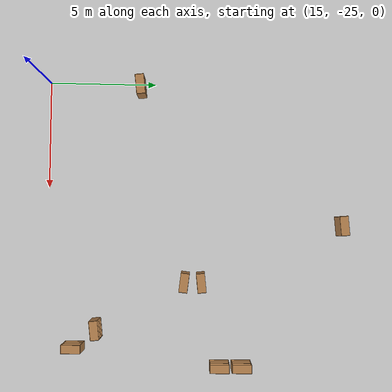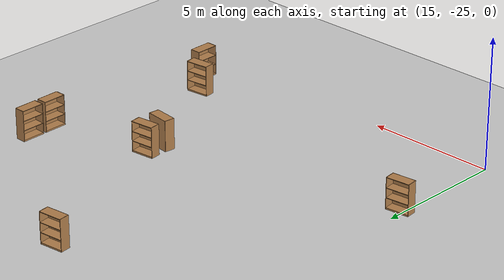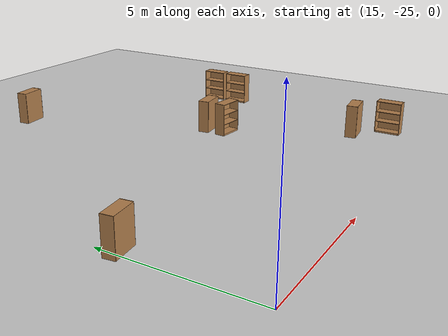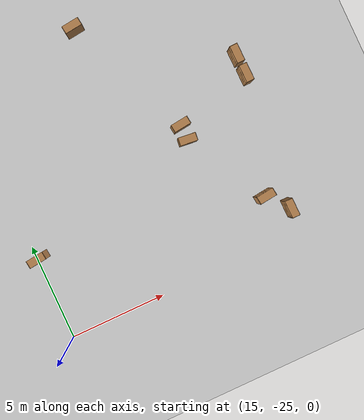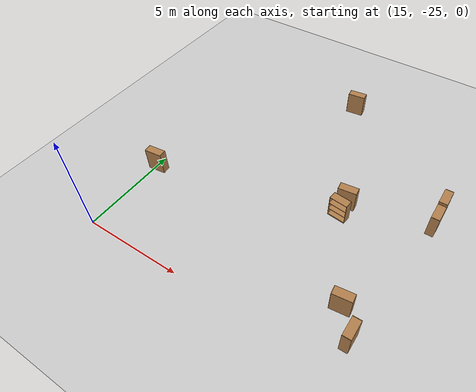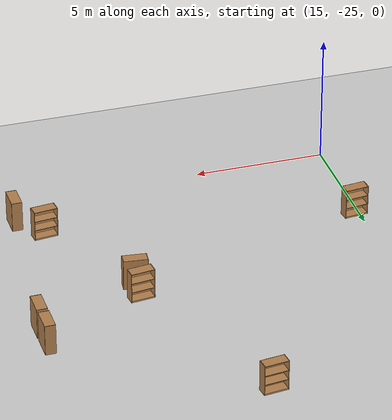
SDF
<sdf version="1.6">
 <world name="default">
  <model name="ground_plane">
   <static>1</static>
   <link name="link">
    <collision name="collision">
     <geometry><plane><normal>0 0 1</normal><size>100 100</size></plane></geometry>
     <surface>
      <contact><collide_bitmask>65535</collide_bitmask></contact>
      <friction><ode><mu>100</mu><mu2>50</mu2></ode></friction>
     </surface>
    </collision>
    <visual name="visual">
     <cast_shadows>0</cast_shadows>
     <geometry><plane><normal>0 0 1</normal><size>100 100</size></plane></geometry>
     <material>
      <script><uri>file://media/materials/scripts/gazebo.material</uri><name>Gazebo/Grey</name></script>
     </material>
    </visual>
   </link>
  </model>
  <model name="bookshelf_clone_2_clone_clone_0_clone_3_clone_0_clone_clone_1_clone_2">
   <static>1</static>
   <link name="link">
    <inertial><mass>1</mass></inertial>
    <collision name="back">
     <pose>0 0.005 0.6 0 -0 0</pose>
     <geometry><box><size>0.9 0.01 1.2</size></box></geometry>
    </collision>
    <visual name="visual1">
     <pose>0 0.005 0.6 0 -0 0</pose>
     <geometry><box><size>0.9 0.01 1.2</size></box></geometry>
     <material>
      <script><uri>file://media/materials/scripts/gazebo.material</uri><name>Gazebo/Wood</name></script>
     </material>
    </visual>
    <collision name="left_side">
     <pose>0.45 -0.195 0.6 0 -0 0</pose>
     <geometry><box><size>0.02 0.4 1.2</size></box></geometry>
    </collision>
    <visual name="visual2">
     <pose>0.45 -0.195 0.6 0 -0 0</pose>
     <geometry><box><size>0.02 0.4 1.2</size></box></geometry>
     <material>
      <script><uri>file://media/materials/scripts/gazebo.material</uri><name>Gazebo/Wood</name></script>
     </material>
    </visual>
    <collision name="right_side">
     <pose>-0.45 -0.195 0.6 0 -0 0</pose>
     <geometry><box><size>0.02 0.4 1.2</size></box></geometry>
    </collision>
    <visual name="visual3">
     <pose>-0.45 -0.195 0.6 0 -0 0</pose>
     <geometry><box><size>0.02 0.4 1.2</size></box></geometry>
     <material>
      <script><uri>file://media/materials/scripts/gazebo.material</uri><name>Gazebo/Wood</name></script>
     </material>
    </visual>
    <collision name="bottom">
     <pose>0 -0.195 0.03 0 -0 0</pose>
     <geometry><box><size>0.88 0.4 0.06</size></box></geometry>
    </collision>
    <visual name="visual4">
     <pose>0 -0.195 0.03 0 -0 0</pose>
     <geometry><box><size>0.88 0.4 0.06</size></box></geometry>
     <material>
      <script><uri>file://media/materials/scripts/gazebo.material</uri><name>Gazebo/Wood</name></script>
     </material>
    </visual>
    <collision name="top">
     <pose>0 -0.195 1.19 0 -0 0</pose>
     <geometry><box><size>0.88 0.4 0.02</size></box></geometry>
    </collision>
    <visual name="visual5">
     <pose>0 -0.195 1.19 0 -0 0</pose>
     <geometry><box><size>0.88 0.4 0.02</size></box></geometry>
     <material>
      <script><uri>file://media/materials/scripts/gazebo.material</uri><name>Gazebo/Wood</name></script>
     </material>
    </visual>
    <collision name="low_shelf">
     <pose>0 -0.195 0.43 0 -0 0</pose>
     <geometry><box><size>0.88 0.4 0.02</size></box></geometry>
    </collision>
    <visual name="visual6">
     <pose>0 -0.195 0.43 0 -0 0</pose>
     <geometry><box><size>0.88 0.4 0.02</size></box></geometry>
     <material>
      <script><uri>file://media/materials/scripts/gazebo.material</uri><name>Gazebo/Wood</name></script>
     </material>
    </visual>
    <collision name="high_shelf">
     <pose>0 -0.195 0.8 0 -0 0</pose>
     <geometry><box><size>0.88 0.4 0.02</size></box></geometry>
    </collision>
    <visual name="visual7">
     <pose>0 -0.195 0.8 0 -0 0</pose>
     <geometry><box><size>0.88 0.4 0.02</size></box></geometry>
     <material>
      <script><uri>file://media/materials/scripts/gazebo.material</uri><name>Gazebo/Wood</name></script>
     </material>
    </visual>
   </link>
   <pose>21.5897 -11.2108 0 0 0 -3.02711</pose>
  </model>
  <model name="bookshelf_clone_2_clone_clone_0_clone_3_clone_0_clone_clone_1_clone_3_clone">
   <static>1</static>
   <link name="link">
    <inertial><mass>1</mass></inertial>
    <collision name="back">
     <pose>0 0.005 0.6 0 -0 0</pose>
     <geometry><box><size>0.9 0.01 1.2</size></box></geometry>
    </collision>
    <visual name="visual1">
     <pose>0 0.005 0.6 0 -0 0</pose>
     <geometry><box><size>0.9 0.01 1.2</size></box></geometry>
     <material>
      <script><uri>file://media/materials/scripts/gazebo.material</uri><name>Gazebo/Wood</name></script>
     </material>
    </visual>
    <collision name="left_side">
     <pose>0.45 -0.195 0.6 0 -0 0</pose>
     <geometry><box><size>0.02 0.4 1.2</size></box></geometry>
    </collision>
    <visual name="visual2">
     <pose>0.45 -0.195 0.6 0 -0 0</pose>
     <geometry><box><size>0.02 0.4 1.2</size></box></geometry>
     <material>
      <script><uri>file://media/materials/scripts/gazebo.material</uri><name>Gazebo/Wood</name></script>
     </material>
    </visual>
    <collision name="right_side">
     <pose>-0.45 -0.195 0.6 0 -0 0</pose>
     <geometry><box><size>0.02 0.4 1.2</size></box></geometry>
    </collision>
    <visual name="visual3">
     <pose>-0.45 -0.195 0.6 0 -0 0</pose>
     <geometry><box><size>0.02 0.4 1.2</size></box></geometry>
     <material>
      <script><uri>file://media/materials/scripts/gazebo.material</uri><name>Gazebo/Wood</name></script>
     </material>
    </visual>
    <collision name="bottom">
     <pose>0 -0.195 0.03 0 -0 0</pose>
     <geometry><box><size>0.88 0.4 0.06</size></box></geometry>
    </collision>
    <visual name="visual4">
     <pose>0 -0.195 0.03 0 -0 0</pose>
     <geometry><box><size>0.88 0.4 0.06</size></box></geometry>
     <material>
      <script><uri>file://media/materials/scripts/gazebo.material</uri><name>Gazebo/Wood</name></script>
     </material>
    </visual>
    <collision name="top">
     <pose>0 -0.195 1.19 0 -0 0</pose>
     <geometry><box><size>0.88 0.4 0.02</size></box></geometry>
    </collision>
    <visual name="visual5">
     <pose>0 -0.195 1.19 0 -0 0</pose>
     <geometry><box><size>0.88 0.4 0.02</size></box></geometry>
     <material>
      <script><uri>file://media/materials/scripts/gazebo.material</uri><name>Gazebo/Wood</name></script>
     </material>
    </visual>
    <collision name="low_shelf">
     <pose>0 -0.195 0.43 0 -0 0</pose>
     <geometry><box><size>0.88 0.4 0.02</size></box></geometry>
    </collision>
    <visual name="visual6">
     <pose>0 -0.195 0.43 0 -0 0</pose>
     <geometry><box><size>0.88 0.4 0.02</size></box></geometry>
     <material>
      <script><uri>file://media/materials/scripts/gazebo.material</uri><name>Gazebo/Wood</name></script>
     </material>
    </visual>
    <collision name="high_shelf">
     <pose>0 -0.195 0.8 0 -0 0</pose>
     <geometry><box><size>0.88 0.4 0.02</size></box></geometry>
    </collision>
    <visual name="visual7">
     <pose>0 -0.195 0.8 0 -0 0</pose>
     <geometry><box><size>0.88 0.4 0.02</size></box></geometry>
     <material>
      <script><uri>file://media/materials/scripts/gazebo.material</uri><name>Gazebo/Wood</name></script>
     </material>
    </visual>
   </link>
   <pose>15.1992 -20.8399 0 0 0 -3.02711</pose>
  </model>
  <model name="bookshelf_clone_2_clone_clone_0_clone_3_clone_0_clone_1_clone_clone_clone_1_clone">
   <static>1</static>
   <link name="link">
    <inertial><mass>1</mass></inertial>
    <collision name="back">
     <pose>0 0.005 0.6 0 -0 0</pose>
     <geometry><box><size>0.9 0.01 1.2</size></box></geometry>
    </collision>
    <visual name="visual1">
     <pose>0 0.005 0.6 0 -0 0</pose>
     <geometry><box><size>0.9 0.01 1.2</size></box></geometry>
     <material>
      <script><uri>file://media/materials/scripts/gazebo.material</uri><name>Gazebo/Wood</name></script>
     </material>
    </visual>
    <collision name="left_side">
     <pose>0.45 -0.195 0.6 0 -0 0</pose>
     <geometry><box><size>0.02 0.4 1.2</size></box></geometry>
    </collision>
    <visual name="visual2">
     <pose>0.45 -0.195 0.6 0 -0 0</pose>
     <geometry><box><size>0.02 0.4 1.2</size></box></geometry>
     <material>
      <script><uri>file://media/materials/scripts/gazebo.material</uri><name>Gazebo/Wood</name></script>
     </material>
    </visual>
    <collision name="right_side">
     <pose>-0.45 -0.195 0.6 0 -0 0</pose>
     <geometry><box><size>0.02 0.4 1.2</size></box></geometry>
    </collision>
    <visual name="visual3">
     <pose>-0.45 -0.195 0.6 0 -0 0</pose>
     <geometry><box><size>0.02 0.4 1.2</size></box></geometry>
     <material>
      <script><uri>file://media/materials/scripts/gazebo.material</uri><name>Gazebo/Wood</name></script>
     </material>
    </visual>
    <collision name="bottom">
     <pose>0 -0.195 0.03 0 -0 0</pose>
     <geometry><box><size>0.88 0.4 0.06</size></box></geometry>
    </collision>
    <visual name="visual4">
     <pose>0 -0.195 0.03 0 -0 0</pose>
     <geometry><box><size>0.88 0.4 0.06</size></box></geometry>
     <material>
      <script><uri>file://media/materials/scripts/gazebo.material</uri><name>Gazebo/Wood</name></script>
     </material>
    </visual>
    <collision name="top">
     <pose>0 -0.195 1.19 0 -0 0</pose>
     <geometry><box><size>0.88 0.4 0.02</size></box></geometry>
    </collision>
    <visual name="visual5">
     <pose>0 -0.195 1.19 0 -0 0</pose>
     <geometry><box><size>0.88 0.4 0.02</size></box></geometry>
     <material>
      <script><uri>file://media/materials/scripts/gazebo.material</uri><name>Gazebo/Wood</name></script>
     </material>
    </visual>
    <collision name="low_shelf">
     <pose>0 -0.195 0.43 0 -0 0</pose>
     <geometry><box><size>0.88 0.4 0.02</size></box></geometry>
    </collision>
    <visual name="visual6">
     <pose>0 -0.195 0.43 0 -0 0</pose>
     <geometry><box><size>0.88 0.4 0.02</size></box></geometry>
     <material>
      <script><uri>file://media/materials/scripts/gazebo.material</uri><name>Gazebo/Wood</name></script>
     </material>
    </visual>
    <collision name="high_shelf">
     <pose>0 -0.195 0.8 0 -0 0</pose>
     <geometry><box><size>0.88 0.4 0.02</size></box></geometry>
    </collision>
    <visual name="visual7">
     <pose>0 -0.195 0.8 0 -0 0</pose>
     <geometry><box><size>0.88 0.4 0.02</size></box></geometry>
     <material>
      <script><uri>file://media/materials/scripts/gazebo.material</uri><name>Gazebo/Wood</name></script>
     </material>
    </visual>
   </link>
   <pose>27.7585 -23.6054 0 0 0 -1.56003</pose>
  </model>
  <model name="bookshelf_clone_2_clone_clone_0_clone_3_clone_0_clone_clone_1_clone_3_clone_clone">
   <static>1</static>
   <link name="link">
    <inertial><mass>1</mass></inertial>
    <collision name="back">
     <pose>0 0.005 0.6 0 -0 0</pose>
     <geometry><box><size>0.9 0.01 1.2</size></box></geometry>
    </collision>
    <visual name="visual1">
     <pose>0 0.005 0.6 0 -0 0</pose>
     <geometry><box><size>0.9 0.01 1.2</size></box></geometry>
     <material>
      <script><uri>file://media/materials/scripts/gazebo.material</uri><name>Gazebo/Wood</name></script>
     </material>
    </visual>
    <collision name="left_side">
     <pose>0.45 -0.195 0.6 0 -0 0</pose>
     <geometry><box><size>0.02 0.4 1.2</size></box></geometry>
    </collision>
    <visual name="visual2">
     <pose>0.45 -0.195 0.6 0 -0 0</pose>
     <geometry><box><size>0.02 0.4 1.2</size></box></geometry>
     <material>
      <script><uri>file://media/materials/scripts/gazebo.material</uri><name>Gazebo/Wood</name></script>
     </material>
    </visual>
    <collision name="right_side">
     <pose>-0.45 -0.195 0.6 0 -0 0</pose>
     <geometry><box><size>0.02 0.4 1.2</size></box></geometry>
    </collision>
    <visual name="visual3">
     <pose>-0.45 -0.195 0.6 0 -0 0</pose>
     <geometry><box><size>0.02 0.4 1.2</size></box></geometry>
     <material>
      <script><uri>file://media/materials/scripts/gazebo.material</uri><name>Gazebo/Wood</name></script>
     </material>
    </visual>
    <collision name="bottom">
     <pose>0 -0.195 0.03 0 -0 0</pose>
     <geometry><box><size>0.88 0.4 0.06</size></box></geometry>
    </collision>
    <visual name="visual4">
     <pose>0 -0.195 0.03 0 -0 0</pose>
     <geometry><box><size>0.88 0.4 0.06</size></box></geometry>
     <material>
      <script><uri>file://media/materials/scripts/gazebo.material</uri><name>Gazebo/Wood</name></script>
     </material>
    </visual>
    <collision name="top">
     <pose>0 -0.195 1.19 0 -0 0</pose>
     <geometry><box><size>0.88 0.4 0.02</size></box></geometry>
    </collision>
    <visual name="visual5">
     <pose>0 -0.195 1.19 0 -0 0</pose>
     <geometry><box><size>0.88 0.4 0.02</size></box></geometry>
     <material>
      <script><uri>file://media/materials/scripts/gazebo.material</uri><name>Gazebo/Wood</name></script>
     </material>
    </visual>
    <collision name="low_shelf">
     <pose>0 -0.195 0.43 0 -0 0</pose>
     <geometry><box><size>0.88 0.4 0.02</size></box></geometry>
    </collision>
    <visual name="visual6">
     <pose>0 -0.195 0.43 0 -0 0</pose>
     <geometry><box><size>0.88 0.4 0.02</size></box></geometry>
     <material>
      <script><uri>file://media/materials/scripts/gazebo.material</uri><name>Gazebo/Wood</name></script>
     </material>
    </visual>
    <collision name="high_shelf">
     <pose>0 -0.195 0.8 0 -0 0</pose>
     <geometry><box><size>0.88 0.4 0.02</size></box></geometry>
    </collision>
    <visual name="visual7">
     <pose>0 -0.195 0.8 0 -0 0</pose>
     <geometry><box><size>0.88 0.4 0.02</size></box></geometry>
     <material>
      <script><uri>file://media/materials/scripts/gazebo.material</uri><name>Gazebo/Wood</name></script>
     </material>
    </visual>
   </link>
   <pose>26.6976 -22.7429 0 0 0 -3.02711</pose>
  </model>
  <model name="bookshelf_clone_2_clone_clone_0_clone_3_clone_0_clone_1_clone_clone_clone_1_clone_0_clone">
   <static>1</static>
   <link name="link">
    <inertial><mass>1</mass></inertial>
    <collision name="back">
     <pose>0 0.005 0.6 0 -0 0</pose>
     <geometry><box><size>0.9 0.01 1.2</size></box></geometry>
    </collision>
    <visual name="visual1">
     <pose>0 0.005 0.6 0 -0 0</pose>
     <geometry><box><size>0.9 0.01 1.2</size></box></geometry>
     <material>
      <script><uri>file://media/materials/scripts/gazebo.material</uri><name>Gazebo/Wood</name></script>
     </material>
    </visual>
    <collision name="left_side">
     <pose>0.45 -0.195 0.6 0 -0 0</pose>
     <geometry><box><size>0.02 0.4 1.2</size></box></geometry>
    </collision>
    <visual name="visual2">
     <pose>0.45 -0.195 0.6 0 -0 0</pose>
     <geometry><box><size>0.02 0.4 1.2</size></box></geometry>
     <material>
      <script><uri>file://media/materials/scripts/gazebo.material</uri><name>Gazebo/Wood</name></script>
     </material>
    </visual>
    <collision name="right_side">
     <pose>-0.45 -0.195 0.6 0 -0 0</pose>
     <geometry><box><size>0.02 0.4 1.2</size></box></geometry>
    </collision>
    <visual name="visual3">
     <pose>-0.45 -0.195 0.6 0 -0 0</pose>
     <geometry><box><size>0.02 0.4 1.2</size></box></geometry>
     <material>
      <script><uri>file://media/materials/scripts/gazebo.material</uri><name>Gazebo/Wood</name></script>
     </material>
    </visual>
    <collision name="bottom">
     <pose>0 -0.195 0.03 0 -0 0</pose>
     <geometry><box><size>0.88 0.4 0.06</size></box></geometry>
    </collision>
    <visual name="visual4">
     <pose>0 -0.195 0.03 0 -0 0</pose>
     <geometry><box><size>0.88 0.4 0.06</size></box></geometry>
     <material>
      <script><uri>file://media/materials/scripts/gazebo.material</uri><name>Gazebo/Wood</name></script>
     </material>
    </visual>
    <collision name="top">
     <pose>0 -0.195 1.19 0 -0 0</pose>
     <geometry><box><size>0.88 0.4 0.02</size></box></geometry>
    </collision>
    <visual name="visual5">
     <pose>0 -0.195 1.19 0 -0 0</pose>
     <geometry><box><size>0.88 0.4 0.02</size></box></geometry>
     <material>
      <script><uri>file://media/materials/scripts/gazebo.material</uri><name>Gazebo/Wood</name></script>
     </material>
    </visual>
    <collision name="low_shelf">
     <pose>0 -0.195 0.43 0 -0 0</pose>
     <geometry><box><size>0.88 0.4 0.02</size></box></geometry>
    </collision>
    <visual name="visual6">
     <pose>0 -0.195 0.43 0 -0 0</pose>
     <geometry><box><size>0.88 0.4 0.02</size></box></geometry>
     <material>
      <script><uri>file://media/materials/scripts/gazebo.material</uri><name>Gazebo/Wood</name></script>
     </material>
    </visual>
    <collision name="high_shelf">
     <pose>0 -0.195 0.8 0 -0 0</pose>
     <geometry><box><size>0.88 0.4 0.02</size></box></geometry>
    </collision>
    <visual name="visual7">
     <pose>0 -0.195 0.8 0 -0 0</pose>
     <geometry><box><size>0.88 0.4 0.02</size></box></geometry>
     <material>
      <script><uri>file://media/materials/scripts/gazebo.material</uri><name>Gazebo/Wood</name></script>
     </material>
    </visual>
   </link>
   <pose>28.5251 -16.6721 0 0 0 -1.56003</pose>
  </model>
  <model name="bookshelf_clone_2_clone_clone_0_clone_3_clone_0_clone_1_clone_clone_clone_1_clone_0_clone_0">
   <static>1</static>
   <link name="link">
    <inertial><mass>1</mass></inertial>
    <collision name="back">
     <pose>0 0.005 0.6 0 -0 0</pose>
     <geometry><box><size>0.9 0.01 1.2</size></box></geometry>
    </collision>
    <visual name="visual1">
     <pose>0 0.005 0.6 0 -0 0</pose>
     <geometry><box><size>0.9 0.01 1.2</size></box></geometry>
     <material>
      <script><uri>file://media/materials/scripts/gazebo.material</uri><name>Gazebo/Wood</name></script>
     </material>
    </visual>
    <collision name="left_side">
     <pose>0.45 -0.195 0.6 0 -0 0</pose>
     <geometry><box><size>0.02 0.4 1.2</size></box></geometry>
    </collision>
    <visual name="visual2">
     <pose>0.45 -0.195 0.6 0 -0 0</pose>
     <geometry><box><size>0.02 0.4 1.2</size></box></geometry>
     <material>
      <script><uri>file://media/materials/scripts/gazebo.material</uri><name>Gazebo/Wood</name></script>
     </material>
    </visual>
    <collision name="right_side">
     <pose>-0.45 -0.195 0.6 0 -0 0</pose>
     <geometry><box><size>0.02 0.4 1.2</size></box></geometry>
    </collision>
    <visual name="visual3">
     <pose>-0.45 -0.195 0.6 0 -0 0</pose>
     <geometry><box><size>0.02 0.4 1.2</size></box></geometry>
     <material>
      <script><uri>file://media/materials/scripts/gazebo.material</uri><name>Gazebo/Wood</name></script>
     </material>
    </visual>
    <collision name="bottom">
     <pose>0 -0.195 0.03 0 -0 0</pose>
     <geometry><box><size>0.88 0.4 0.06</size></box></geometry>
    </collision>
    <visual name="visual4">
     <pose>0 -0.195 0.03 0 -0 0</pose>
     <geometry><box><size>0.88 0.4 0.06</size></box></geometry>
     <material>
      <script><uri>file://media/materials/scripts/gazebo.material</uri><name>Gazebo/Wood</name></script>
     </material>
    </visual>
    <collision name="top">
     <pose>0 -0.195 1.19 0 -0 0</pose>
     <geometry><box><size>0.88 0.4 0.02</size></box></geometry>
    </collision>
    <visual name="visual5">
     <pose>0 -0.195 1.19 0 -0 0</pose>
     <geometry><box><size>0.88 0.4 0.02</size></box></geometry>
     <material>
      <script><uri>file://media/materials/scripts/gazebo.material</uri><name>Gazebo/Wood</name></script>
     </material>
    </visual>
    <collision name="low_shelf">
     <pose>0 -0.195 0.43 0 -0 0</pose>
     <geometry><box><size>0.88 0.4 0.02</size></box></geometry>
    </collision>
    <visual name="visual6">
     <pose>0 -0.195 0.43 0 -0 0</pose>
     <geometry><box><size>0.88 0.4 0.02</size></box></geometry>
     <material>
      <script><uri>file://media/materials/scripts/gazebo.material</uri><name>Gazebo/Wood</name></script>
     </material>
    </visual>
    <collision name="high_shelf">
     <pose>0 -0.195 0.8 0 -0 0</pose>
     <geometry><box><size>0.88 0.4 0.02</size></box></geometry>
    </collision>
    <visual name="visual7">
     <pose>0 -0.195 0.8 0 -0 0</pose>
     <geometry><box><size>0.88 0.4 0.02</size></box></geometry>
     <material>
      <script><uri>file://media/materials/scripts/gazebo.material</uri><name>Gazebo/Wood</name></script>
     </material>
    </visual>
   </link>
   <pose>28.5034 -15.6339 0 0 0 -1.56003</pose>
  </model>
  <model name="bookshelf_clone_2_clone_clone_0_clone_3_clone_0_clone_clone_1_clone_3_clone_clone_clone">
   <static>1</static>
   <link name="link">
    <inertial><mass>1</mass></inertial>
    <collision name="back">
     <pose>0 0.005 0.6 0 -0 0</pose>
     <geometry><box><size>0.9 0.01 1.2</size></box></geometry>
    </collision>
    <visual name="visual1">
     <pose>0 0.005 0.6 0 -0 0</pose>
     <geometry><box><size>0.9 0.01 1.2</size></box></geometry>
     <material>
      <script><uri>file://media/materials/scripts/gazebo.material</uri><name>Gazebo/Wood</name></script>
     </material>
    </visual>
    <collision name="left_side">
     <pose>0.45 -0.195 0.6 0 -0 0</pose>
     <geometry><box><size>0.02 0.4 1.2</size></box></geometry>
    </collision>
    <visual name="visual2">
     <pose>0.45 -0.195 0.6 0 -0 0</pose>
     <geometry><box><size>0.02 0.4 1.2</size></box></geometry>
     <material>
      <script><uri>file://media/materials/scripts/gazebo.material</uri><name>Gazebo/Wood</name></script>
     </material>
    </visual>
    <collision name="right_side">
     <pose>-0.45 -0.195 0.6 0 -0 0</pose>
     <geometry><box><size>0.02 0.4 1.2</size></box></geometry>
    </collision>
    <visual name="visual3">
     <pose>-0.45 -0.195 0.6 0 -0 0</pose>
     <geometry><box><size>0.02 0.4 1.2</size></box></geometry>
     <material>
      <script><uri>file://media/materials/scripts/gazebo.material</uri><name>Gazebo/Wood</name></script>
     </material>
    </visual>
    <collision name="bottom">
     <pose>0 -0.195 0.03 0 -0 0</pose>
     <geometry><box><size>0.88 0.4 0.06</size></box></geometry>
    </collision>
    <visual name="visual4">
     <pose>0 -0.195 0.03 0 -0 0</pose>
     <geometry><box><size>0.88 0.4 0.06</size></box></geometry>
     <material>
      <script><uri>file://media/materials/scripts/gazebo.material</uri><name>Gazebo/Wood</name></script>
     </material>
    </visual>
    <collision name="top">
     <pose>0 -0.195 1.19 0 -0 0</pose>
     <geometry><box><size>0.88 0.4 0.02</size></box></geometry>
    </collision>
    <visual name="visual5">
     <pose>0 -0.195 1.19 0 -0 0</pose>
     <geometry><box><size>0.88 0.4 0.02</size></box></geometry>
     <material>
      <script><uri>file://media/materials/scripts/gazebo.material</uri><name>Gazebo/Wood</name></script>
     </material>
    </visual>
    <collision name="low_shelf">
     <pose>0 -0.195 0.43 0 -0 0</pose>
     <geometry><box><size>0.88 0.4 0.02</size></box></geometry>
    </collision>
    <visual name="visual6">
     <pose>0 -0.195 0.43 0 -0 0</pose>
     <geometry><box><size>0.88 0.4 0.02</size></box></geometry>
     <material>
      <script><uri>file://media/materials/scripts/gazebo.material</uri><name>Gazebo/Wood</name></script>
     </material>
    </visual>
    <collision name="high_shelf">
     <pose>0 -0.195 0.8 0 -0 0</pose>
     <geometry><box><size>0.88 0.4 0.02</size></box></geometry>
    </collision>
    <visual name="visual7">
     <pose>0 -0.195 0.8 0 -0 0</pose>
     <geometry><box><size>0.88 0.4 0.02</size></box></geometry>
     <material>
      <script><uri>file://media/materials/scripts/gazebo.material</uri><name>Gazebo/Wood</name></script>
     </material>
    </visual>
   </link>
   <pose>24.3852 -17.8046 0 0 0 -3.02711</pose>
  </model>
  <model name="bookshelf_clone_2_clone_clone_0_clone_3_clone_0_clone_clone_1_clone_3_clone_clone_clone_clone">
   <static>1</static>
   <link name="link">
    <inertial><mass>1</mass></inertial>
    <collision name="back">
     <pose>0 0.005 0.6 0 -0 0</pose>
     <geometry><box><size>0.9 0.01 1.2</size></box></geometry>
    </collision>
    <visual name="visual1">
     <pose>0 0.005 0.6 0 -0 0</pose>
     <geometry><box><size>0.9 0.01 1.2</size></box></geometry>
     <material>
      <script><uri>file://media/materials/scripts/gazebo.material</uri><name>Gazebo/Wood</name></script>
     </material>
    </visual>
    <collision name="left_side">
     <pose>0.45 -0.195 0.6 0 -0 0</pose>
     <geometry><box><size>0.02 0.4 1.2</size></box></geometry>
    </collision>
    <visual name="visual2">
     <pose>0.45 -0.195 0.6 0 -0 0</pose>
     <geometry><box><size>0.02 0.4 1.2</size></box></geometry>
     <material>
      <script><uri>file://media/materials/scripts/gazebo.material</uri><name>Gazebo/Wood</name></script>
     </material>
    </visual>
    <collision name="right_side">
     <pose>-0.45 -0.195 0.6 0 -0 0</pose>
     <geometry><box><size>0.02 0.4 1.2</size></box></geometry>
    </collision>
    <visual name="visual3">
     <pose>-0.45 -0.195 0.6 0 -0 0</pose>
     <geometry><box><size>0.02 0.4 1.2</size></box></geometry>
     <material>
      <script><uri>file://media/materials/scripts/gazebo.material</uri><name>Gazebo/Wood</name></script>
     </material>
    </visual>
    <collision name="bottom">
     <pose>0 -0.195 0.03 0 -0 0</pose>
     <geometry><box><size>0.88 0.4 0.06</size></box></geometry>
    </collision>
    <visual name="visual4">
     <pose>0 -0.195 0.03 0 -0 0</pose>
     <geometry><box><size>0.88 0.4 0.06</size></box></geometry>
     <material>
      <script><uri>file://media/materials/scripts/gazebo.material</uri><name>Gazebo/Wood</name></script>
     </material>
    </visual>
    <collision name="top">
     <pose>0 -0.195 1.19 0 -0 0</pose>
     <geometry><box><size>0.88 0.4 0.02</size></box></geometry>
    </collision>
    <visual name="visual5">
     <pose>0 -0.195 1.19 0 -0 0</pose>
     <geometry><box><size>0.88 0.4 0.02</size></box></geometry>
     <material>
      <script><uri>file://media/materials/scripts/gazebo.material</uri><name>Gazebo/Wood</name></script>
     </material>
    </visual>
    <collision name="low_shelf">
     <pose>0 -0.195 0.43 0 -0 0</pose>
     <geometry><box><size>0.88 0.4 0.02</size></box></geometry>
    </collision>
    <visual name="visual6">
     <pose>0 -0.195 0.43 0 -0 0</pose>
     <geometry><box><size>0.88 0.4 0.02</size></box></geometry>
     <material>
      <script><uri>file://media/materials/scripts/gazebo.material</uri><name>Gazebo/Wood</name></script>
     </material>
    </visual>
    <collision name="high_shelf">
     <pose>0 -0.195 0.8 0 -0 0</pose>
     <geometry><box><size>0.88 0.4 0.02</size></box></geometry>
    </collision>
    <visual name="visual7">
     <pose>0 -0.195 0.8 0 -0 0</pose>
     <geometry><box><size>0.88 0.4 0.02</size></box></geometry>
     <material>
      <script><uri>file://media/materials/scripts/gazebo.material</uri><name>Gazebo/Wood</name></script>
     </material>
    </visual>
   </link>
   <pose>24.3875 -18.2173 0 0 0 -0.107272</pose>
  </model>
 </world>
</sdf>
